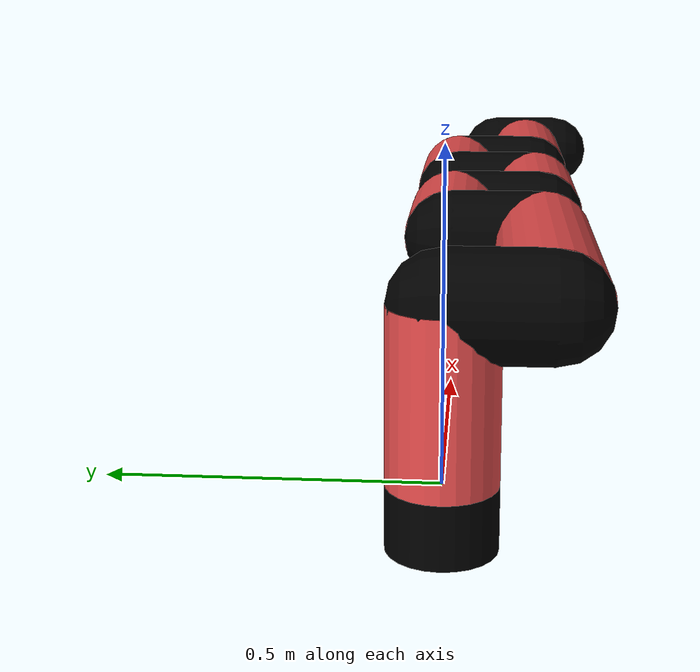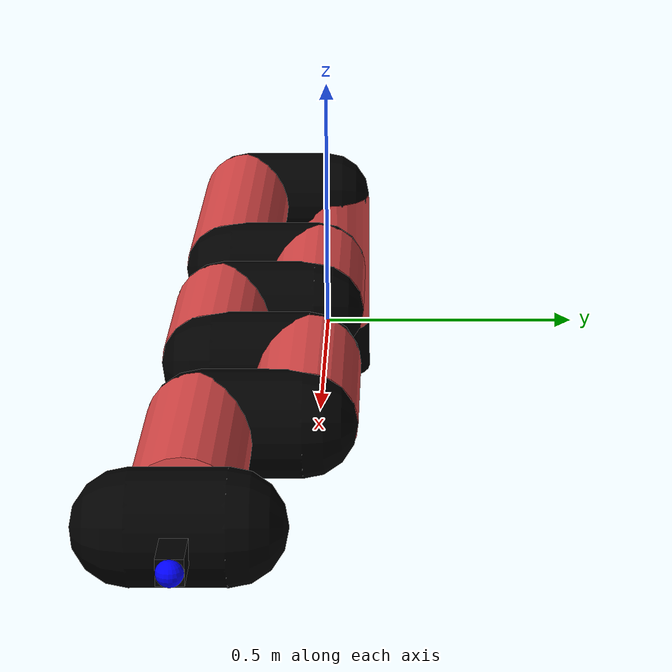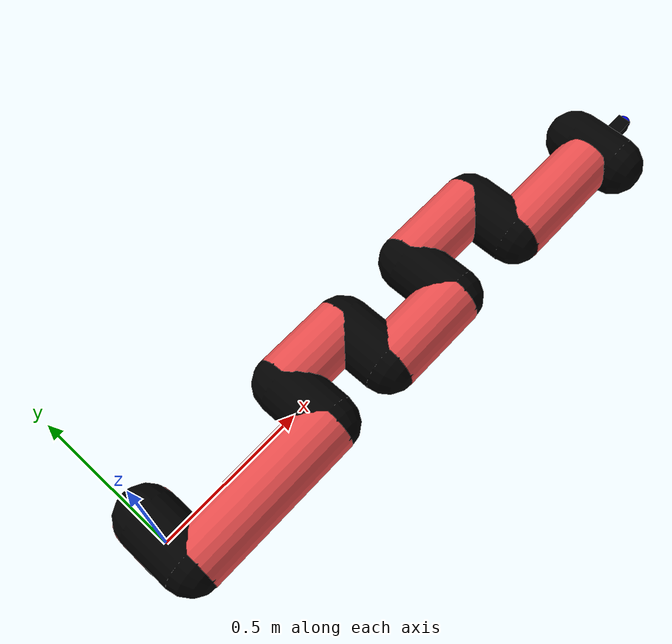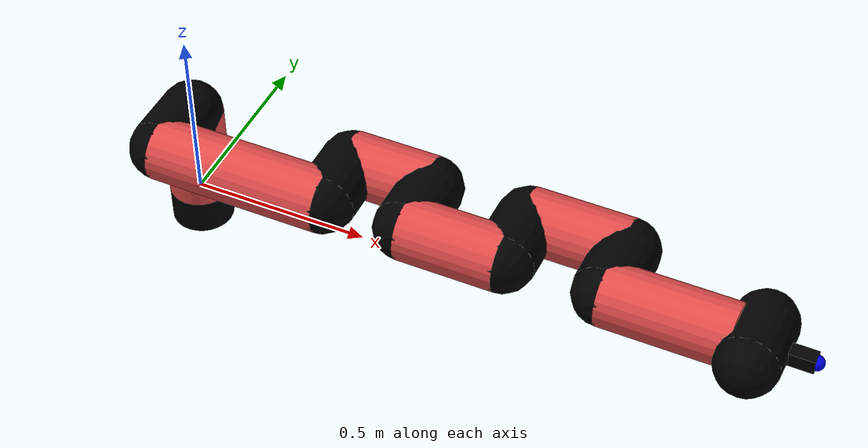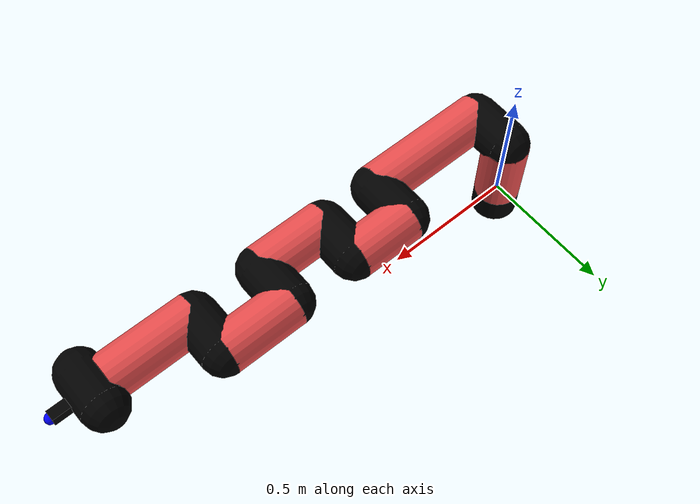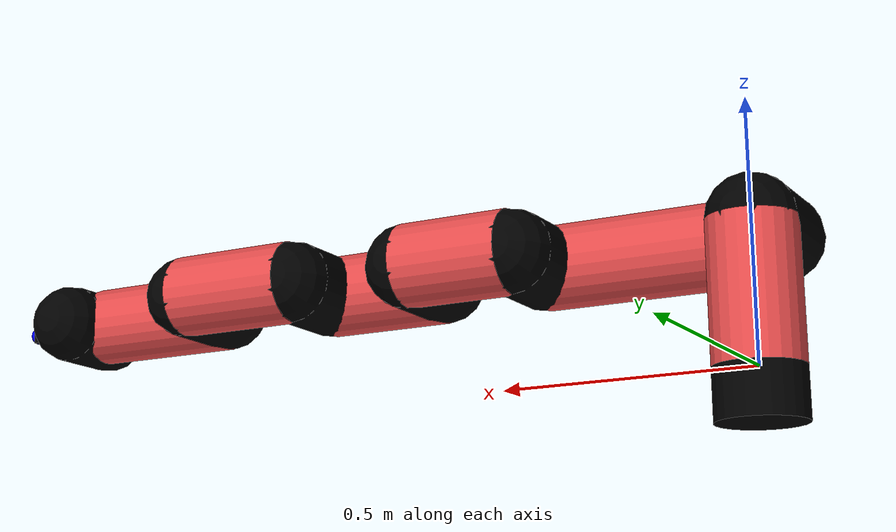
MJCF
<mujoco model="manipulator">
		<compiler angle="degree" coordinate="local" inertiafromgeom="auto" meshdir="meshes/"/>
		<option gravity="0 0 0" integrator="RK4" iterations="30" timestep="0.01"/>

		<default>
		<joint armature="1" limited="true" stiffness="10" damping="15" frictionloss="5.0"/>
		<geom conaffinity="1" condim="3" contype="1" friction=".5 .1 .1" margin="0.002"/>
		<motor ctrllimited="true"/>
		<position ctrllimited="true"/>
		</default>

		<asset>
		<texture builtin="gradient" height="100" rgb1="1.0 1.0 1.0" rgb2="1.0 1.0 1.0" type="skybox" width="100"/>
		<texture builtin="flat" height="32" name="arm_tex" rgb1="0.9 0.3 0.3" type="2d" width="32"/>
		<texture builtin="flat" height="32" name="gripper_tex" rgb1="0.0 0.0 0.0" type="cube" width="32"/>

		<material name="arm_mat" shininess="0.1" specular="0.1" texture="arm_tex"/>
		<material name="gripper_mat" shininess="1" specular="1" texture="gripper_tex"/>
		</asset>

		<worldbody>
		<light cutoff="45" diffuse=".8 .8 .8" dir="0 0.16 -1" directional="false" name="light" pos="0 -2.0 8.0" specular="0.3 0.3 0.3"/>

		<body name="base_link" pos="0 0 -0.1">
		<geom fromto="0 0 0 0 0 0.1" material="arm_mat" name="base_link" rgba="0.0 0.0 0.0 1" size="0.085" type="cylinder"/>
		</body>

		<body name="l1" pos="0 0 0">
<geom fromto="0 0 0 0 0 0.27" material="arm_mat" name="l1" rgba="0.9 0.3 0.3 1" size="0.085" type="cylinder"/>
<geom fromto="0 0 0.27 0 -0.16 0.27" material="arm_mat" name="l1_ex" rgba="0.0 0.0 0.0 1" size="0.085" type="capsule"/>
<joint axis="0 0 1" name="j1" pos="0 0 0" range="-90 90" damping="34.98" frictionloss="7.94"/>

<body name="l2" pos="0 -0.16 0.27">
<geom fromto="0 0 0 0.48 0 0" material="arm_mat" name="l2" rgba="0.9 0.3 0.3 1" size="0.085" type="cylinder"/>
<geom fromto="0.48 0 0 0.48 0.16 0" material="arm_mat" name="l2_ex" rgba="0.0 0.0 0.0 1" size="0.085" type="capsule"/>
<joint axis="0.0 1.0 0.0" name="j2" pos="0 0 0" range="-90 60" damping="25.71" frictionloss="11.68"/>

<body name="l3" pos="0.48 0.16 0">
<geom fromto="0 0 0 0.23 0 0" material="arm_mat" name="l3" rgba="0.9 0.3 0.3 1" size="0.085" type="cylinder"/>
<geom fromto="0.23 0 0 0.23 -0.16 0" material="arm_mat" name="l3_ex" rgba="0.0 0.0 0.0 1" size="0.085" type="capsule"/>
<joint axis="0.0 1.0 0.0" name="j3" pos="0 0 0" range="-30 60" damping="25.56" frictionloss="10.99"/>

<body name="l4" pos="0.23 -0.16 0">
<geom fromto="0 0 0 0.27 0 0" material="arm_mat" name="l4" rgba="0.9 0.3 0.3 1" size="0.085" type="cylinder"/>
<geom fromto="0.27 0 0 0.27 0.16 0" material="arm_mat" name="l4_ex" rgba="0.0 0.0 0.0 1" size="0.085" type="capsule"/>
<joint axis="0.0 1.0 0.0" name="j4" pos="0 0 0" range="-30 60" damping="25.66" frictionloss="7.56"/>

<body name="l5" pos="0.27 0.16 0">
<geom fromto="0 0 0 0.27 0 0" material="arm_mat" name="l5" rgba="0.9 0.3 0.3 1" size="0.085" type="cylinder"/>
<geom fromto="0.27 0 0 0.27 -0.16 0" material="arm_mat" name="l5_ex" rgba="0.0 0.0 0.0 1" size="0.085" type="capsule"/>
<joint axis="0.0 1.0 0.0" name="j5" pos="0 0 0" range="-30 60" damping="26.16" frictionloss="8.03"/>

<body name="l6" pos="0.27 -0.16 0">
<geom fromto="0 0 0 0.34 0 0" material="arm_mat" name="l6" rgba="0.9 0.3 0.3 1" size="0.085" type="cylinder"/>
<joint axis="0.0 1.0 0.0" name="j6" pos="0 0 0" range="-30 60" damping="36.71" frictionloss="12.16"/>

<body name="gripper" pos="0.34 0 0">
<geom fromto="0.05 -0.07 0 0.05 0.07 0" material="gripper_mat" name="gripper" rgba="0.0 0.0 0.0 1" size="0.085" type="capsule"/><joint axis="1 0 0" name="j7" pos="0 0 0" range="-90 90" damping="15" frictionloss="5.0"/><body name="finger" pos="0.1 0 0">
<geom fromto="0 0.0 0 0.1 0.0 0" material="gripper_mat" name="finger" rgba="0.0 0.0 0.0 1" size="0.020 0.06 0.06" type="box"/>
</body>
<site name="current" pos="0.2 0. 0.0" rgba="0. 0. 1.0 1" size="0.02" type="sphere"/>
</body>
</body>
</body>
</body>
</body>
</body>
</body>
</worldbody>
<actuator>
<motor ctrllimited="true" ctrlrange="-1.0 1.0" joint="j1" gear="69.08"/>
<motor ctrllimited="true" ctrlrange="-1.0 1.0" joint="j2" gear="79.69"/>
<motor ctrllimited="true" ctrlrange="-1.0 1.0" joint="j3" gear="72.36"/>
<motor ctrllimited="true" ctrlrange="-1.0 1.0" joint="j4" gear="90.33"/>
<motor ctrllimited="true" ctrlrange="-1.0 1.0" joint="j5" gear="80.22"/>
<motor ctrllimited="true" ctrlrange="-1.0 1.0" joint="j6" gear="60.69"/>
<motor ctrllimited="true" ctrlrange="-1.0 1.0" joint="j7" gear="80"/>
</actuator>
</mujoco>
